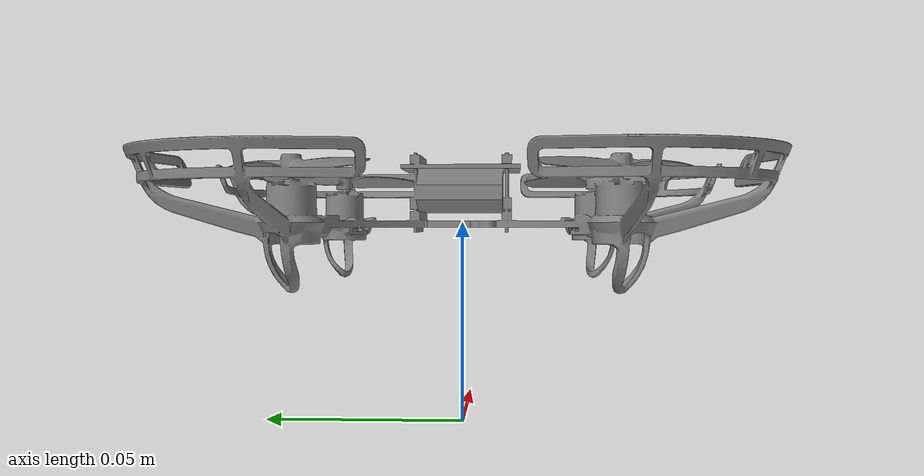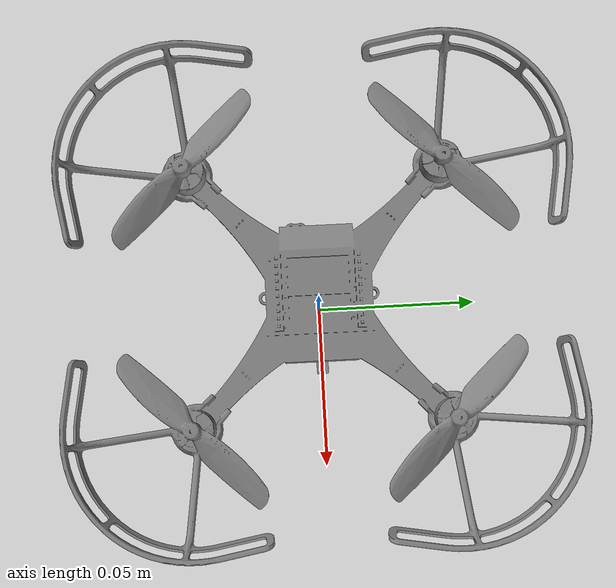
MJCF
<mujoco model="cf21B">
  <compiler inertiafromgeom="false" meshdir="assets" autolimits="true" />

  <asset>
    <mesh name="cf21B_fused" file="cf21B/cf21B_fused.stl" scale="1e-3 1e-3 1e-3"/>
  </asset>

  <default>
    <default class="cf21B">
      <default class="visual">
        <geom group="2" type="mesh" contype="0" conaffinity="0" />
      </default>
      <default class="collision">
        <geom group="3" condim="1" />
      </default>
      <site group="5" />
    </default>
  </default>

  <worldbody>
    <body name="drone" pos="0 0 0.05" childclass="cf21B">
      <site name="CoM" />
      <inertial pos="0.0 0.0 0.0" mass="0.04338" diaginertia="2.3951e-5 2.3951e-5 3.2347e-5" />

      <geom mesh="cf21B_fused" material="" class="visual" />

      <geom name="col_sphere" type="sphere" size="0.086" pos="0 0 0.02" class="collision" contype="1" conaffinity="1" />
      <geom name="col_box" type="box" size="0.07 0.07 0.02" class="collision" rgba="0.5 0.5 0.5 0" contype="0" conaffinity="0" />

      <site name="motor0" pos="0.03536 -0.03536 0.0" />
      <site name="motor1" pos="-0.03536 -0.03536 0.0" />
      <site name="motor2" pos="-0.03536 0.03536 0.0" />
      <site name="motor3" pos="0.03536 0.03536 0.0" />

      <camera name="track_cam" pos="-1 0 .5" xyaxes="0 -1 0 1 0 2" mode="trackcom" />
      <camera name="fpv_cam" pos="0.03 0 0" euler="0 -90 -90" fovy="70" resolution="640 480" />
    </body>
  </worldbody>

</mujoco>
